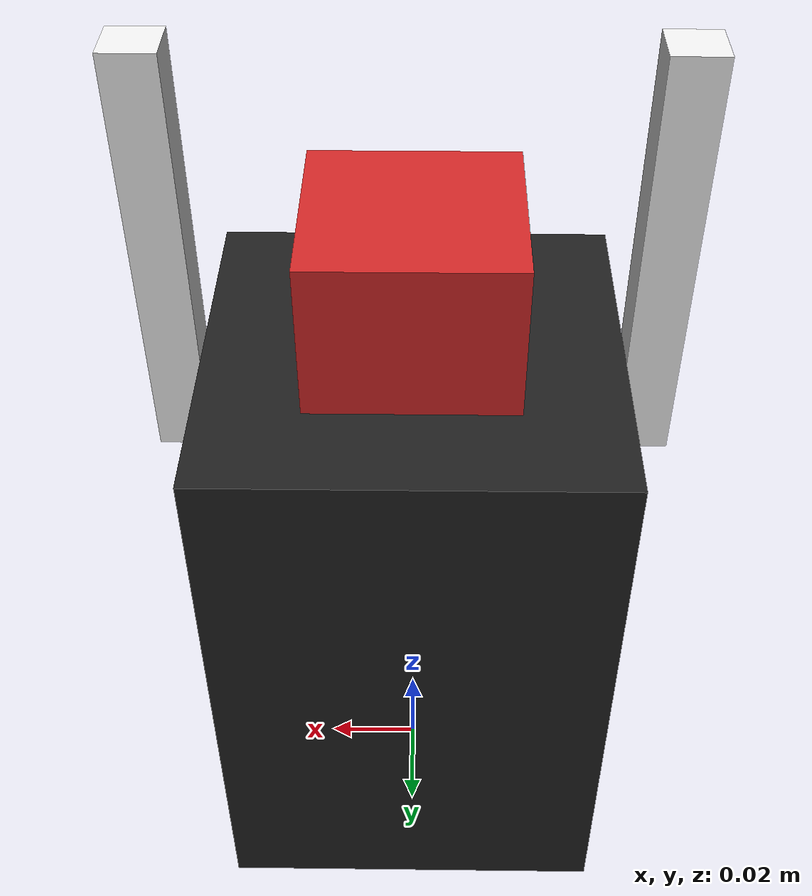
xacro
<?xml version="1.0"?>
<robot name="ithsbot" xmlns:xacro="http://www.ros.org/wiki/xacro">

  <!-- Arbitrary value for mass -->
  <xacro:property name="mass" value="1"/>
  <!-- Robot dimensions -->
  <xacro:property name="body_width" value="0.08"/>
  <xacro:property name="body_height" value="0.12"/>
  <xacro:property name="head_width" value="0.04"/>
  <xacro:property name="head_height" value="0.03"/>
  <xacro:property name="arm_width" value="0.01"/>
  <xacro:property name="arm_height" value="0.08"/>

  <!-- Import all Gazebo-customization elements, including Gazebo colors -->
  <xacro:include filename="$(find iths)/urdf/ithsbot.gazebo"/>
  <!-- Import Rviz colors -->
  <xacro:include filename="$(find iths)/urdf/materials.xacro"/>

  <!-- Used for fixing robot to Gazebo 'base_link' -->
  <link name="world"/>

  <joint name="fixed" type="fixed">
    <parent link="world"/>
    <child link="body_link"/>
  </joint>

  <!-- Body Link -->
  <link name="body_link">
    <collision>
      <origin xyz="0 0 ${body_height/2}" rpy="0 0 0"/>
      <geometry>
        <box size="${body_width} ${body_width} ${body_height}"/>
      </geometry>
    </collision>

    <visual>
      <origin xyz="0 0 ${body_height/2}" rpy="0 0 0"/>
      <geometry>
        <box size="${body_width} ${body_width} ${body_height}"/>
      </geometry>
      <material name="black"/>
    </visual>

    <inertial>
      <origin xyz="0 0 ${body_height/2}" rpy="0 0 0"/>
      <mass value="${mass}"/>
      <inertia ixx="${mass / 12.0 * (body_width*body_width + body_height*body_height)}" ixy="0.0" ixz="0.0" iyy="${mass / 12.0 * (body_height*body_height + body_width*body_width)}" iyz="0.0" izz="${mass / 12.0 * (body_width*body_width + body_width*body_width)}"/>
    </inertial>
  </link>

  <joint name="head_joint" type="continuous">
    <parent link="body_link"/>
    <child link="head_link"/>
    <origin xyz="0 0 0" rpy="0 0 0"/>
    <axis xyz="0 0 1"/>
  </joint>

  <!-- Head Link -->
  <link name="head_link">
    <collision>
      <origin xyz="0 0 ${body_height + head_height/2}" rpy="0 0 0"/>
      <geometry>
        <box size="${head_width} ${head_width} ${head_height}"/>
      </geometry>
    </collision>

    <visual>
      <origin xyz="0 0 ${body_height + head_height/2}" rpy="0 0 0"/>
      <geometry>
        <box size="${head_width} ${head_width} ${head_height}"/>
      </geometry>
      <material name="red"/>
    </visual>

    <inertial>
      <origin xyz="0 0 ${body_height + head_height/2}" rpy="0 0 0"/>
      <mass value="${mass}"/>
      <inertia ixx="${mass / 12.0 * (head_width*head_width + head_height*head_height)}" ixy="0.0" ixz="0.0" iyy="${mass / 12.0 * (head_height*head_height + head_width*head_width)}" iyz="0.0" izz="${mass / 12.0 * (head_width*head_width + head_width*head_width)}"/>
    </inertial>
  </link>

  <joint name="left_arm_joint" type="continuous">
    <parent link="body_link"/>
    <child link="left_arm_link"/>
    <origin xyz="0 0 ${body_height - 0.02}" rpy="0 0 0"/>
    <axis xyz="1 0 0"/>
    <dynamics damping="0.7"/>
  </joint>

  <!-- Left arm link -->
  <link name="left_arm_link">
    <collision>
      <origin xyz="-${body_width/2 + arm_width/2} 0 ${arm_height/2}" rpy="0 0 0"/>
      <geometry>
        <box size="${arm_width} ${arm_width} ${arm_height}"/>
      </geometry>
    </collision>

    <visual>
      <origin xyz="-${body_width/2 + arm_width/2} 0 ${arm_height/2}" rpy="0 0 0"/>
      <geometry>
        <box size="${arm_width} ${arm_width} ${arm_height}"/>
      </geometry>
      <material name="white"/>
    </visual>

    <inertial>
      <origin xyz="-${body_width/2 + arm_width/2} 0 ${arm_height/2}" rpy="0 0 0"/>
      <mass value="${mass}"/>
      <inertia ixx="${mass / 12.0 * (arm_width*arm_width + arm_height*arm_height)}" ixy="0.0" ixz="0.0" iyy="${mass / 12.0 * (arm_height*arm_height + arm_width*arm_width)}" iyz="0.0" izz="${mass / 12.0 * (arm_width*arm_width + arm_width*arm_width)}"/>
    </inertial>
  </link>

  <joint name="right_arm_joint" type="continuous">
    <parent link="body_link"/>
    <child link="right_arm_link"/>
    <origin xyz="0 0 ${body_height - 0.02}" rpy="0 0 0"/>
    <axis xyz="1 0 0"/>
    <dynamics damping="0.7"/>
  </joint>

   <!-- Right arm link -->
  <link name="right_arm_link">
    <collision>
      <origin xyz="${body_width/2 + arm_width/2} 0 ${arm_height/2}" rpy="0 0 0"/>
      <geometry>
        <box size="${arm_width} ${arm_width} ${arm_height}"/>
      </geometry>
    </collision>

    <visual>
      <origin xyz="${body_width/2 + arm_width/2} 0 ${arm_height/2}" rpy="0 0 0"/>
      <geometry>
        <box size="${arm_width} ${arm_width} ${arm_height}"/>
      </geometry>
      <material name="white"/>
    </visual>

    <inertial>
      <origin xyz="${body_width/2 + arm_width/2} 0 ${arm_height/2}" rpy="0 0 0"/>
      <mass value="${mass}"/>
      <inertia ixx="${mass / 12.0 * (arm_width*arm_width + arm_height*arm_height)}" ixy="0.0" ixz="0.0" iyy="${mass / 12.0 * (arm_height*arm_height + arm_width*arm_width)}" iyz="0.0" izz="${mass / 12.0 * (arm_width*arm_width + arm_width*arm_width)}"/>
    </inertial>
  </link>

  <ros2_control name="GazeboSystem" type="system">

    <hardware>
      <plugin>gazebo_ros2_control/GazeboSystem</plugin>
    </hardware>

    <joint name="head_joint">
      <command_interface name="position">
        <param name="min">-6.28</param>
        <param name="max">6.28</param>
      </command_interface>
      <state_interface name="position"/>
    </joint>

    <joint name="left_arm_joint">
      <command_interface name="position">
        <param name="min">-6.28</param>
        <param name="max">6.28</param>
      </command_interface>
      <state_interface name="position"/>
    </joint>

    <joint name="right_arm_joint">
      <command_interface name="position">
        <param name="min">-6.28</param>
        <param name="max">6.28</param>
      </command_interface>
      <state_interface name="position"/>
    </joint>

  </ros2_control>

  <!-- Gazebo's ros2_control plugin -->
  <gazebo>
    <plugin filename="libgazebo_ros2_control.so" name="gazebo_ros2_control">
      <robot_sim_type>gazebo_ros2_control/GazeboSystem</robot_sim_type>
      <parameters>$(find iths)/config/iths_controller_configuration.yaml</parameters>
    </plugin>
  </gazebo>

</robot>
